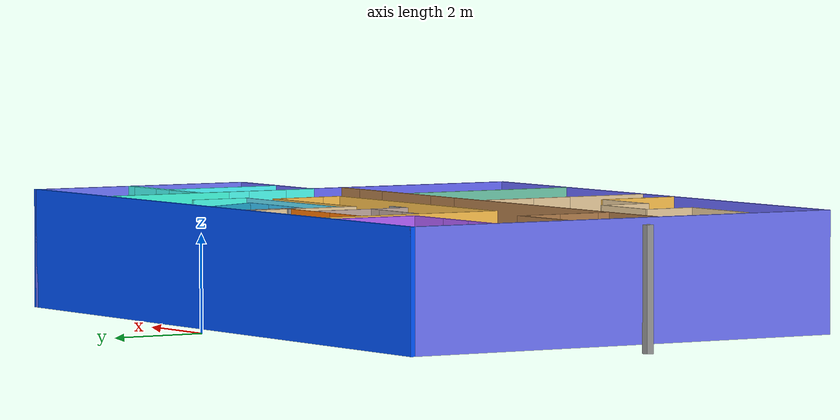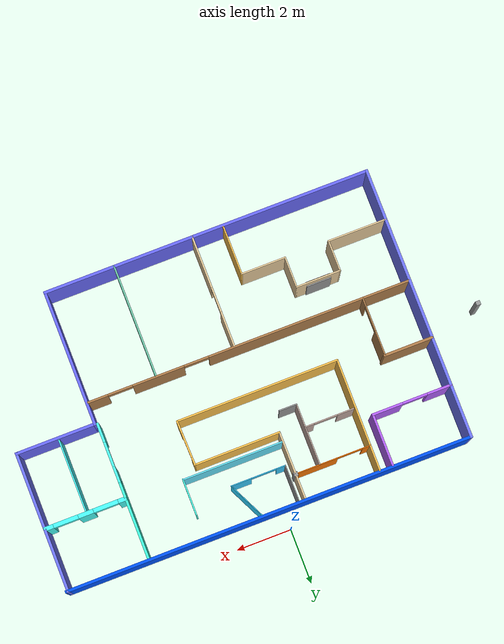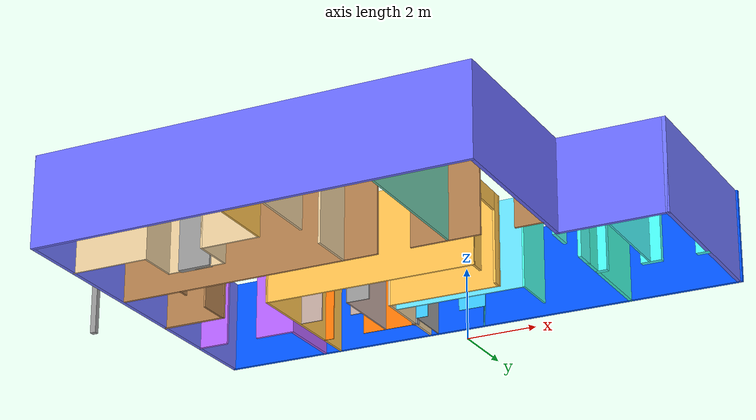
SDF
<?xml version='1.0'?>
<sdf version='1.6'>
  <model name='building'>
    <pose frame=''>-0.401722 -5.585 0 0 -0 0</pose>
    <link name='Door_14'>
      <collision name='Door_14_Collision'>
        <geometry>
          <box>
            <size>0.9 0.17 2</size>
          </box>
        </geometry>
        <pose frame=''>0 0 1 0 -0 0</pose>
      </collision>
      <visual name='Door_14_Visual'>
        <pose frame=''>0 0 1 0 -0 0</pose>
        <geometry>
          <box>
            <size>0.9 0.17 2</size>
          </box>
        </geometry>
        <material>
          <script>
            <uri>file://media/materials/scripts/gazebo.material</uri>
            <name>Gazebo/Grey</name>
          </script>
        </material>
      </visual>
      <pose frame=''>-3.51828 -2.035 0 0 -0 0</pose>
    </link>
    <link name='Wall_0'>
      <collision name='Wall_0_Collision'>
        <geometry>
          <box>
            <size>14.85 0.1 2.5</size>
          </box>
        </geometry>
        <pose frame=''>0 0 1.25 0 -0 0</pose>
      </collision>
      <visual name='Wall_0_Visual'>
        <pose frame=''>0 0 1.25 0 -0 0</pose>
        <geometry>
          <box>
            <size>14.85 0.1 2.5</size>
          </box>
        </geometry>
        <material>
          <script>
            <uri>file://media/materials/scripts/gazebo.material</uri>
            <name>Gazebo/Grey</name>
          </script>
          <ambient>0 0.333333 1 1</ambient>
        </material>
        <meta>
          <layer>0</layer>
        </meta>
      </visual>
      <pose frame=''>0.966722 4.925 0 0 -0 0</pose>
    </link>
    <link name='Wall_101'>
      <collision name='Wall_101_Collision'>
        <geometry>
          <box>
            <size>0.16 0.15 2.5</size>
          </box>
        </geometry>
        <pose frame=''>0 0 1.25 0 -0 0</pose>
      </collision>
      <visual name='Wall_101_Visual'>
        <pose frame=''>0 0 1.25 0 -0 0</pose>
        <geometry>
          <box>
            <size>0.16 0.15 2.5</size>
          </box>
        </geometry>
        <material>
          <script>
            <uri>file://media/materials/scripts/gazebo.material</uri>
            <name>Gazebo/Grey</name>
          </script>
          <ambient>1 1 1 1</ambient>
        </material>
        <meta>
          <layer>0</layer>
        </meta>
      </visual>
      <pose frame=''>-8.31172 0.73148 0 0 -0 0</pose>
    </link>
    <link name='Wall_11'>
      <collision name='Wall_11_Collision'>
        <geometry>
          <box>
            <size>2.95 0.1 2.5</size>
          </box>
        </geometry>
        <pose frame=''>0 0 1.25 0 -0 0</pose>
      </collision>
      <visual name='Wall_11_Visual'>
        <pose frame=''>0 0 1.25 0 -0 0</pose>
        <geometry>
          <box>
            <size>2.95 0.1 2.5</size>
          </box>
        </geometry>
        <material>
          <script>
            <uri>file://media/materials/scripts/gazebo.material</uri>
            <name>Gazebo/Grey</name>
          </script>
          <ambient>0.415686 0.423529 1 1</ambient>
        </material>
        <meta>
          <layer>0</layer>
        </meta>
      </visual>
      <pose frame=''>6.86672 -0.075 0 0 -0 0</pose>
    </link>
    <link name='Wall_13'>
      <collision name='Wall_13_Collision'>
        <geometry>
          <box>
            <size>5.1 0.1 2.5</size>
          </box>
        </geometry>
        <pose frame=''>0 0 1.25 0 -0 0</pose>
      </collision>
      <visual name='Wall_13_Visual'>
        <pose frame=''>0 0 1.25 0 -0 0</pose>
        <geometry>
          <box>
            <size>5.1 0.1 2.5</size>
          </box>
        </geometry>
        <material>
          <script>
            <uri>file://media/materials/scripts/gazebo.material</uri>
            <name>Gazebo/Grey</name>
          </script>
          <ambient>0.439216 0.466667 1 1</ambient>
        </material>
        <meta>
          <layer>0</layer>
        </meta>
      </visual>
      <pose frame=''>8.29172 2.425 0 0 -0 1.5708</pose>
    </link>
    <link name='Wall_16'>
      <pose frame=''>-4.97328 3.025 0 0 -0 0</pose>
      <visual name='Wall_16_Visual_0'>
        <pose frame=''>-1.015 0 1.25 0 -0 0</pose>
        <geometry>
          <box>
            <size>0.9 0.08 2.5</size>
          </box>
        </geometry>
        <material>
          <script>
            <uri>file://media/materials/scripts/gazebo.material</uri>
            <name>Gazebo/Grey</name>
          </script>
          <ambient>0.713726 0.384314 1 1</ambient>
        </material>
        <meta>
          <layer>0</layer>
        </meta>
      </visual>
      <collision name='Wall_16_Collision_0'>
        <geometry>
          <box>
            <size>0.9 0.08 2.5</size>
          </box>
        </geometry>
        <pose frame=''>-1.015 0 1.25 0 -0 0</pose>
      </collision>
      <visual name='Wall_16_Visual_1'>
        <pose frame=''>0.9 0 1.25 0 -0 0</pose>
        <geometry>
          <box>
            <size>1.13 0.08 2.5</size>
          </box>
        </geometry>
        <material>
          <script>
            <uri>file://media/materials/scripts/gazebo.material</uri>
            <name>Gazebo/Grey</name>
          </script>
          <ambient>0.713726 0.384314 1 1</ambient>
        </material>
        <meta>
          <layer>0</layer>
        </meta>
      </visual>
      <collision name='Wall_16_Collision_1'>
        <geometry>
          <box>
            <size>1.13 0.08 2.5</size>
          </box>
        </geometry>
        <pose frame=''>0.9 0 1.25 0 -0 0</pose>
      </collision>
      <visual name='Wall_16_Visual_2'>
        <pose frame=''>-0.115 0 2.25 0 -0 0</pose>
        <geometry>
          <box>
            <size>0.9 0.08 0.5</size>
          </box>
        </geometry>
        <material>
          <script>
            <uri>file://media/materials/scripts/gazebo.material</uri>
            <name>Gazebo/Grey</name>
          </script>
          <ambient>0.713726 0.384314 1 1</ambient>
        </material>
        <meta>
          <layer>0</layer>
        </meta>
      </visual>
      <collision name='Wall_16_Collision_2'>
        <geometry>
          <box>
            <size>0.9 0.08 0.5</size>
          </box>
        </geometry>
        <pose frame=''>-0.115 0 2.25 0 -0 0</pose>
      </collision>
    </link>
    <link name='Wall_17'>
      <collision name='Wall_17_Collision'>
        <geometry>
          <box>
            <size>1.93 0.08 2.5</size>
          </box>
        </geometry>
        <pose frame=''>0 0 1.25 0 -0 0</pose>
      </collision>
      <visual name='Wall_17_Visual'>
        <pose frame=''>0 0 1.25 0 -0 0</pose>
        <geometry>
          <box>
            <size>1.93 0.08 2.5</size>
          </box>
        </geometry>
        <material>
          <script>
            <uri>file://media/materials/scripts/gazebo.material</uri>
            <name>Gazebo/Grey</name>
          </script>
          <ambient>0.713726 0.384314 1 1</ambient>
        </material>
        <meta>
          <layer>0</layer>
        </meta>
      </visual>
      <pose frame=''>-3.54828 3.95 0 0 -0 1.5708</pose>
    </link>
    <link name='Wall_19'>
      <collision name='Wall_19_Collision'>
        <geometry>
          <box>
            <size>4.11001 0.06 2.5</size>
          </box>
        </geometry>
        <pose frame=''>0 0 1.25 0 -0 0</pose>
      </collision>
      <visual name='Wall_19_Visual'>
        <pose frame=''>0 0 1.25 0 -0 0</pose>
        <geometry>
          <box>
            <size>4.11001 0.06 2.5</size>
          </box>
        </geometry>
        <material>
          <script>
            <uri>file://media/materials/scripts/gazebo.material</uri>
            <name>Gazebo/Grey</name>
          </script>
          <ambient>1 0.764706 0.305882 1</ambient>
        </material>
        <meta>
          <layer>0</layer>
        </meta>
      </visual>
      <pose frame=''>-3.08328 2.86 0 0 0 -1.57326</pose>
    </link>
    <link name='Wall_20'>
      <collision name='Wall_20_Collision'>
        <geometry>
          <box>
            <size>5.92001 0.06 2.5</size>
          </box>
        </geometry>
        <pose frame=''>0 0 1.25 0 -0 0</pose>
      </collision>
      <visual name='Wall_20_Visual'>
        <pose frame=''>0 0 1.25 0 -0 0</pose>
        <geometry>
          <box>
            <size>5.92001 0.06 2.5</size>
          </box>
        </geometry>
        <material>
          <script>
            <uri>file://media/materials/scripts/gazebo.material</uri>
            <name>Gazebo/Grey</name>
          </script>
          <ambient>1 0.764706 0.305882 1</ambient>
        </material>
        <meta>
          <layer>0</layer>
        </meta>
      </visual>
      <pose frame=''>-0.148278 0.84 0 0 -0 0.001706</pose>
    </link>
    <link name='Wall_21'>
      <pose frame=''>2.76172 1.655 0 0 -0 1.59579</pose>
      <visual name='Wall_21_Visual_0'>
        <pose frame=''>-0.601224 0 1.25 0 -0 0</pose>
        <geometry>
          <box>
            <size>0.458052 0.06 2.5</size>
          </box>
        </geometry>
        <material>
          <script>
            <uri>file://media/materials/scripts/gazebo.material</uri>
            <name>Gazebo/Grey</name>
          </script>
          <ambient>1 0.764706 0.305882 1</ambient>
        </material>
        <meta>
          <layer>0</layer>
        </meta>
      </visual>
      <collision name='Wall_21_Collision_0'>
        <geometry>
          <box>
            <size>0.458052 0.06 2.5</size>
          </box>
        </geometry>
        <pose frame=''>-0.601224 0 1.25 0 -0 0</pose>
      </collision>
      <visual name='Wall_21_Visual_1'>
        <pose frame=''>0.679026 0 1.25 0 -0 0</pose>
        <geometry>
          <box>
            <size>0.302448 0.06 2.5</size>
          </box>
        </geometry>
        <material>
          <script>
            <uri>file://media/materials/scripts/gazebo.material</uri>
            <name>Gazebo/Grey</name>
          </script>
          <ambient>1 0.764706 0.305882 1</ambient>
        </material>
        <meta>
          <layer>0</layer>
        </meta>
      </visual>
      <collision name='Wall_21_Collision_1'>
        <geometry>
          <box>
            <size>0.302448 0.06 2.5</size>
          </box>
        </geometry>
        <pose frame=''>0.679026 0 1.25 0 -0 0</pose>
      </collision>
      <visual name='Wall_21_Visual_2'>
        <pose frame=''>0.077802 0 2.25 0 -0 0</pose>
        <geometry>
          <box>
            <size>0.9 0.06 0.5</size>
          </box>
        </geometry>
        <material>
          <script>
            <uri>file://media/materials/scripts/gazebo.material</uri>
            <name>Gazebo/Grey</name>
          </script>
          <ambient>1 0.764706 0.305882 1</ambient>
        </material>
        <meta>
          <layer>0</layer>
        </meta>
      </visual>
      <collision name='Wall_21_Collision_2'>
        <geometry>
          <box>
            <size>0.9 0.06 0.5</size>
          </box>
        </geometry>
        <pose frame=''>0.077802 0 2.25 0 -0 0</pose>
      </collision>
    </link>
    <link name='Wall_22'>
      <collision name='Wall_22_Collision'>
        <geometry>
          <box>
            <size>3.15002 0.06 2.5</size>
          </box>
        </geometry>
        <pose frame=''>0 0 1.25 0 -0 0</pose>
      </collision>
      <visual name='Wall_22_Visual'>
        <pose frame=''>0 0 1.25 0 -0 0</pose>
        <geometry>
          <box>
            <size>3.15002 0.06 2.5</size>
          </box>
        </geometry>
        <material>
          <script>
            <uri>file://media/materials/scripts/gazebo.material</uri>
            <name>Gazebo/Grey</name>
          </script>
          <ambient>1 0.764706 0.305882 1</ambient>
        </material>
        <meta>
          <layer>0</layer>
        </meta>
      </visual>
      <pose frame=''>1.20672 2.45 0 0 0 -3.13836</pose>
    </link>
    <link name='Wall_23'>
      <collision name='Wall_23_Collision'>
        <geometry>
          <box>
            <size>2.46033 0.06 2.5</size>
          </box>
        </geometry>
        <pose frame=''>0 0 1.25 0 -0 0</pose>
      </collision>
      <visual name='Wall_23_Visual'>
        <pose frame=''>0 0 1.25 0 -0 0</pose>
        <geometry>
          <box>
            <size>2.46033 0.06 2.5</size>
          </box>
        </geometry>
        <material>
          <script>
            <uri>file://media/materials/scripts/gazebo.material</uri>
            <name>Gazebo/Grey</name>
          </script>
          <ambient>0.921569 0.807843 0.615686 1</ambient>
        </material>
        <meta>
          <layer>0</layer>
        </meta>
      </visual>
      <pose frame=''>-0.353278 3.645 0 0 -0 1.57496</pose>
    </link>
    <link name='Wall_26'>
      <pose frame=''>-1.71828 3.975 0 0 -0 0</pose>
      <visual name='Wall_26_Visual_0'>
        <pose frame=''>-1.22983 0 1.25 0 -0 0</pose>
        <geometry>
          <box>
            <size>0.290333 0.03 2.5</size>
          </box>
        </geometry>
        <material>
          <script>
            <uri>file://media/materials/scripts/gazebo.material</uri>
            <name>Gazebo/Grey</name>
          </script>
          <ambient>0.996078 0.47451 0.0196078 1</ambient>
        </material>
        <meta>
          <layer>0</layer>
        </meta>
      </visual>
      <collision name='Wall_26_Collision_0'>
        <geometry>
          <box>
            <size>0.290333 0.03 2.5</size>
          </box>
        </geometry>
        <pose frame=''>-1.22983 0 1.25 0 -0 0</pose>
      </collision>
      <visual name='Wall_26_Visual_1'>
        <pose frame=''>0.595167 0 1.25 0 -0 0</pose>
        <geometry>
          <box>
            <size>1.55967 0.03 2.5</size>
          </box>
        </geometry>
        <material>
          <script>
            <uri>file://media/materials/scripts/gazebo.material</uri>
            <name>Gazebo/Grey</name>
          </script>
          <ambient>0.996078 0.47451 0.0196078 1</ambient>
        </material>
        <meta>
          <layer>0</layer>
        </meta>
      </visual>
      <collision name='Wall_26_Collision_1'>
        <geometry>
          <box>
            <size>1.55967 0.03 2.5</size>
          </box>
        </geometry>
        <pose frame=''>0.595167 0 1.25 0 -0 0</pose>
      </collision>
      <visual name='Wall_26_Visual_2'>
        <pose frame=''>-0.634667 0 2.25 0 -0 0</pose>
        <geometry>
          <box>
            <size>0.9 0.03 0.5</size>
          </box>
        </geometry>
        <material>
          <script>
            <uri>file://media/materials/scripts/gazebo.material</uri>
            <name>Gazebo/Grey</name>
          </script>
          <ambient>0.996078 0.47451 0.0196078 1</ambient>
        </material>
        <meta>
          <layer>0</layer>
        </meta>
      </visual>
      <collision name='Wall_26_Collision_2'>
        <geometry>
          <box>
            <size>0.9 0.03 0.5</size>
          </box>
        </geometry>
        <pose frame=''>-0.634667 0 2.25 0 -0 0</pose>
      </collision>
    </link>
    <link name='Wall_27'>
      <collision name='Wall_27_Collision'>
        <geometry>
          <box>
            <size>0.15 0.15 2.5</size>
          </box>
        </geometry>
        <pose frame=''>0 0 1.25 0 -0 0</pose>
      </collision>
      <visual name='Wall_27_Visual'>
        <pose frame=''>0 0 1.25 0 -0 0</pose>
        <geometry>
          <box>
            <size>0.15 0.15 2.5</size>
          </box>
        </geometry>
        <material>
          <script>
            <uri>file://media/materials/scripts/gazebo.material</uri>
            <name>Gazebo/Grey</name>
          </script>
          <ambient>1 1 1 1</ambient>
        </material>
        <meta>
          <layer>0</layer>
        </meta>
      </visual>
      <pose frame=''>-0.358278 3.975 0 0 -0 0</pose>
    </link>
    <link name='Wall_3'>
      <collision name='Wall_3_Collision'>
        <geometry>
          <box>
            <size>9.95 0.1 2.5</size>
          </box>
        </geometry>
        <pose frame=''>0 0 1.25 0 -0 0</pose>
      </collision>
      <visual name='Wall_3_Visual'>
        <pose frame=''>0 0 1.25 0 -0 0</pose>
        <geometry>
          <box>
            <size>9.95 0.1 2.5</size>
          </box>
        </geometry>
        <material>
          <script>
            <uri>file://media/materials/scripts/gazebo.material</uri>
            <name>Gazebo/Grey</name>
          </script>
          <ambient>0.439216 0.466667 1 1</ambient>
        </material>
        <meta>
          <layer>0</layer>
        </meta>
      </visual>
      <pose frame=''>-6.40828 0 0 0 0 -1.5708</pose>
    </link>
    <link name='Wall_46'>
      <collision name='Wall_46_Collision'>
        <geometry>
          <box>
            <size>2.24 0.04 2.5</size>
          </box>
        </geometry>
        <pose frame=''>0 0 1.25 0 -0 0</pose>
      </collision>
      <visual name='Wall_46_Visual'>
        <pose frame=''>0 0 1.25 0 -0 0</pose>
        <geometry>
          <box>
            <size>2.24 0.04 2.5</size>
          </box>
        </geometry>
        <material>
          <script>
            <uri>file://media/materials/scripts/gazebo.material</uri>
            <name>Gazebo/Grey</name>
          </script>
          <ambient>0.760784 0.662745 0.627451 1</ambient>
        </material>
        <meta>
          <layer>0</layer>
        </meta>
      </visual>
      <pose frame=''>-1.23828 2.855 0 0 0 -1.5708</pose>
    </link>
    <link name='Wall_52'>
      <pose frame=''>-2.12828 2.595 0 0 -0 3.14159</pose>
      <visual name='Wall_52_Visual_0'>
        <pose frame=''>-0.729794 0 1.25 0 -0 0</pose>
        <geometry>
          <box>
            <size>0.340412 0.04 2.5</size>
          </box>
        </geometry>
        <material>
          <script>
            <uri>file://media/materials/scripts/gazebo.material</uri>
            <name>Gazebo/Grey</name>
          </script>
          <ambient>0.760784 0.662745 0.627451 1</ambient>
        </material>
        <meta>
          <layer>0</layer>
        </meta>
      </visual>
      <collision name='Wall_52_Collision_0'>
        <geometry>
          <box>
            <size>0.340412 0.04 2.5</size>
          </box>
        </geometry>
        <pose frame=''>-0.729794 0 1.25 0 -0 0</pose>
      </collision>
      <visual name='Wall_52_Visual_1'>
        <pose frame=''>0.595206 0 1.25 0 -0 0</pose>
        <geometry>
          <box>
            <size>0.609588 0.04 2.5</size>
          </box>
        </geometry>
        <material>
          <script>
            <uri>file://media/materials/scripts/gazebo.material</uri>
            <name>Gazebo/Grey</name>
          </script>
          <ambient>0.760784 0.662745 0.627451 1</ambient>
        </material>
        <meta>
          <layer>0</layer>
        </meta>
      </visual>
      <collision name='Wall_52_Collision_1'>
        <geometry>
          <box>
            <size>0.609588 0.04 2.5</size>
          </box>
        </geometry>
        <pose frame=''>0.595206 0 1.25 0 -0 0</pose>
      </collision>
      <visual name='Wall_52_Visual_2'>
        <pose frame=''>-0.134588 0 2.25 0 -0 0</pose>
        <geometry>
          <box>
            <size>0.85 0.04 0.5</size>
          </box>
        </geometry>
        <material>
          <script>
            <uri>file://media/materials/scripts/gazebo.material</uri>
            <name>Gazebo/Grey</name>
          </script>
          <ambient>0.760784 0.662745 0.627451 1</ambient>
        </material>
        <meta>
          <layer>0</layer>
        </meta>
      </visual>
      <collision name='Wall_52_Collision_2'>
        <geometry>
          <box>
            <size>0.85 0.04 0.5</size>
          </box>
        </geometry>
        <pose frame=''>-0.134588 0 2.25 0 -0 0</pose>
      </collision>
    </link>
    <link name='Wall_56'>
      <collision name='Wall_56_Collision'>
        <geometry>
          <box>
            <size>0.66 0.04 2.5</size>
          </box>
        </geometry>
        <pose frame=''>0 0 1.25 0 -0 0</pose>
      </collision>
      <visual name='Wall_56_Visual'>
        <pose frame=''>0 0 1.25 0 -0 0</pose>
        <geometry>
          <box>
            <size>0.66 0.04 2.5</size>
          </box>
        </geometry>
        <material>
          <script>
            <uri>file://media/materials/scripts/gazebo.material</uri>
            <name>Gazebo/Grey</name>
          </script>
          <ambient>1 1 1 1</ambient>
        </material>
        <meta>
          <layer>0</layer>
        </meta>
      </visual>
      <pose frame=''>-0.928278 1.755 0 0 -0 0</pose>
    </link>
    <link name='Wall_63'>
      <collision name='Wall_63_Collision'>
        <geometry>
          <box>
            <size>3.65 0.05 2.5</size>
          </box>
        </geometry>
        <pose frame=''>0 0 1.25 0 -0 0</pose>
      </collision>
      <visual name='Wall_63_Visual'>
        <pose frame=''>0 0 1.25 0 -0 0</pose>
        <geometry>
          <box>
            <size>3.65 0.05 2.5</size>
          </box>
        </geometry>
        <material>
          <script>
            <uri>file://media/materials/scripts/gazebo.material</uri>
            <name>Gazebo/Grey</name>
          </script>
          <ambient>0.4 0.901961 1 1</ambient>
        </material>
        <meta>
          <layer>0</layer>
        </meta>
      </visual>
      <pose frame=''>1.50172 2.785 0 0 -0 0</pose>
    </link>
    <link name='Wall_64'>
      <collision name='Wall_64_Collision'>
        <geometry>
          <box>
            <size>1.33 0.05 2.5</size>
          </box>
        </geometry>
        <pose frame=''>0 0 1.25 0 -0 0</pose>
      </collision>
      <visual name='Wall_64_Visual'>
        <pose frame=''>0 0 1.25 0 -0 0</pose>
        <geometry>
          <box>
            <size>1.33 0.05 2.5</size>
          </box>
        </geometry>
        <material>
          <script>
            <uri>file://media/materials/scripts/gazebo.material</uri>
            <name>Gazebo/Grey</name>
          </script>
          <ambient>0.286275 1 0.917647 1</ambient>
        </material>
        <meta>
          <layer>0</layer>
        </meta>
      </visual>
      <pose frame=''>3.30172 3.415 0 0 -0 1.5708</pose>
    </link>
    <link name='Wall_67'>
      <collision name='Wall_67_Collision'>
        <geometry>
          <box>
            <size>2.94 0.09 2.5</size>
          </box>
        </geometry>
        <pose frame=''>0 0 1.25 0 -0 0</pose>
      </collision>
      <visual name='Wall_67_Visual'>
        <pose frame=''>0 0 1.25 0 -0 0</pose>
        <geometry>
          <box>
            <size>2.94 0.09 2.5</size>
          </box>
        </geometry>
        <material>
          <script>
            <uri>file://media/materials/scripts/gazebo.material</uri>
            <name>Gazebo/Grey</name>
          </script>
          <ambient>0.254902 1 0.878431 1</ambient>
        </material>
        <meta>
          <layer>0</layer>
        </meta>
      </visual>
      <pose frame=''>5.35172 3.49 0 0 0 -1.5708</pose>
    </link>
    <link name='Wall_69'>
      <pose frame=''>5.35172 1.015 0 0 0 -1.5708</pose>
      <visual name='Wall_69_Visual_0'>
        <pose frame=''>-0.8025 0 1.25 0 -0 0</pose>
        <geometry>
          <box>
            <size>0.585 0.09 2.5</size>
          </box>
        </geometry>
        <material>
          <script>
            <uri>file://media/materials/scripts/gazebo.material</uri>
            <name>Gazebo/Grey</name>
          </script>
          <ambient>0.305882 1 0.945098 1</ambient>
        </material>
        <meta>
          <layer>0</layer>
        </meta>
      </visual>
      <collision name='Wall_69_Collision_0'>
        <geometry>
          <box>
            <size>0.585 0.09 2.5</size>
          </box>
        </geometry>
        <pose frame=''>-0.8025 0 1.25 0 -0 0</pose>
      </collision>
      <visual name='Wall_69_Visual_1'>
        <pose frame=''>0.7425 0 1.25 0 -0 0</pose>
        <geometry>
          <box>
            <size>0.705 0.09 2.5</size>
          </box>
        </geometry>
        <material>
          <script>
            <uri>file://media/materials/scripts/gazebo.material</uri>
            <name>Gazebo/Grey</name>
          </script>
          <ambient>0.305882 1 0.945098 1</ambient>
        </material>
        <meta>
          <layer>0</layer>
        </meta>
      </visual>
      <collision name='Wall_69_Collision_1'>
        <geometry>
          <box>
            <size>0.705 0.09 2.5</size>
          </box>
        </geometry>
        <pose frame=''>0.7425 0 1.25 0 -0 0</pose>
      </collision>
      <visual name='Wall_69_Visual_2'>
        <pose frame=''>-0.06 0 2.25 0 -0 0</pose>
        <geometry>
          <box>
            <size>0.9 0.09 0.5</size>
          </box>
        </geometry>
        <material>
          <script>
            <uri>file://media/materials/scripts/gazebo.material</uri>
            <name>Gazebo/Grey</name>
          </script>
          <ambient>0.305882 1 0.945098 1</ambient>
        </material>
        <meta>
          <layer>0</layer>
        </meta>
      </visual>
      <collision name='Wall_69_Collision_2'>
        <geometry>
          <box>
            <size>0.9 0.09 0.5</size>
          </box>
        </geometry>
        <pose frame=''>-0.06 0 2.25 0 -0 0</pose>
      </collision>
    </link>
    <link name='Wall_7'>
      <collision name='Wall_7_Collision'>
        <geometry>
          <box>
            <size>11.95 0.1 2.5</size>
          </box>
        </geometry>
        <pose frame=''>0 0 1.25 0 -0 0</pose>
      </collision>
      <visual name='Wall_7_Visual'>
        <pose frame=''>0 0 1.25 0 -0 0</pose>
        <geometry>
          <box>
            <size>11.95 0.1 2.5</size>
          </box>
        </geometry>
        <material>
          <script>
            <uri>file://media/materials/scripts/gazebo.material</uri>
            <name>Gazebo/Grey</name>
          </script>
          <ambient>0.415686 0.423529 1 1</ambient>
        </material>
        <meta>
          <layer>0</layer>
        </meta>
      </visual>
      <pose frame=''>-0.483278 -4.925 0 0 -0 0</pose>
    </link>
    <link name='Wall_72'>
      <pose frame=''>6.82672 2.685 0 0 -0 0</pose>
      <visual name='Wall_72_Visual_0'>
        <pose frame=''>-1.3475 0 1.25 0 -0 0</pose>
        <geometry>
          <box>
            <size>0.305 0.15 2.5</size>
          </box>
        </geometry>
        <material>
          <script>
            <uri>file://media/materials/scripts/gazebo.material</uri>
            <name>Gazebo/Grey</name>
          </script>
          <ambient>0.290196 1 0.976471 1</ambient>
        </material>
        <meta>
          <layer>0</layer>
        </meta>
      </visual>
      <collision name='Wall_72_Collision_0'>
        <geometry>
          <box>
            <size>0.305 0.15 2.5</size>
          </box>
        </geometry>
        <pose frame=''>-1.3475 0 1.25 0 -0 0</pose>
      </collision>
      <visual name='Wall_72_Visual_1'>
        <pose frame=''>-0.02 0 1.25 0 -0 0</pose>
        <geometry>
          <box>
            <size>0.55 0.15 2.5</size>
          </box>
        </geometry>
        <material>
          <script>
            <uri>file://media/materials/scripts/gazebo.material</uri>
            <name>Gazebo/Grey</name>
          </script>
          <ambient>0.290196 1 0.976471 1</ambient>
        </material>
        <meta>
          <layer>0</layer>
        </meta>
      </visual>
      <collision name='Wall_72_Collision_1'>
        <geometry>
          <box>
            <size>0.55 0.15 2.5</size>
          </box>
        </geometry>
        <pose frame=''>-0.02 0 1.25 0 -0 0</pose>
      </collision>
      <visual name='Wall_72_Visual_2'>
        <pose frame=''>1.3275 0 1.25 0 -0 0</pose>
        <geometry>
          <box>
            <size>0.345 0.15 2.5</size>
          </box>
        </geometry>
        <material>
          <script>
            <uri>file://media/materials/scripts/gazebo.material</uri>
            <name>Gazebo/Grey</name>
          </script>
          <ambient>0.290196 1 0.976471 1</ambient>
        </material>
        <meta>
          <layer>0</layer>
        </meta>
      </visual>
      <collision name='Wall_72_Collision_2'>
        <geometry>
          <box>
            <size>0.345 0.15 2.5</size>
          </box>
        </geometry>
        <pose frame=''>1.3275 0 1.25 0 -0 0</pose>
      </collision>
      <visual name='Wall_72_Visual_3'>
        <pose frame=''>-0.745 0 2.25 0 -0 0</pose>
        <geometry>
          <box>
            <size>0.9 0.15 0.5</size>
          </box>
        </geometry>
        <material>
          <script>
            <uri>file://media/materials/scripts/gazebo.material</uri>
            <name>Gazebo/Grey</name>
          </script>
          <ambient>0.290196 1 0.976471 1</ambient>
        </material>
        <meta>
          <layer>0</layer>
        </meta>
      </visual>
      <collision name='Wall_72_Collision_3'>
        <geometry>
          <box>
            <size>0.9 0.15 0.5</size>
          </box>
        </geometry>
        <pose frame=''>-0.745 0 2.25 0 -0 0</pose>
      </collision>
      <visual name='Wall_72_Visual_4'>
        <pose frame=''>0.705 0 2.25 0 -0 0</pose>
        <geometry>
          <box>
            <size>0.9 0.15 0.5</size>
          </box>
        </geometry>
        <material>
          <script>
            <uri>file://media/materials/scripts/gazebo.material</uri>
            <name>Gazebo/Grey</name>
          </script>
          <ambient>0.290196 1 0.976471 1</ambient>
        </material>
        <meta>
          <layer>0</layer>
        </meta>
      </visual>
      <collision name='Wall_72_Collision_4'>
        <geometry>
          <box>
            <size>0.9 0.15 0.5</size>
          </box>
        </geometry>
        <pose frame=''>0.705 0 2.25 0 -0 0</pose>
      </collision>
    </link>
    <link name='Wall_74'>
      <collision name='Wall_74_Collision'>
        <geometry>
          <box>
            <size>2.65 0.05 2.5</size>
          </box>
        </geometry>
        <pose frame=''>0 0 1.25 0 -0 0</pose>
      </collision>
      <visual name='Wall_74_Visual'>
        <pose frame=''>0 0 1.25 0 -0 0</pose>
        <geometry>
          <box>
            <size>2.65 0.05 2.5</size>
          </box>
        </geometry>
        <material>
          <script>
            <uri>file://media/materials/scripts/gazebo.material</uri>
            <name>Gazebo/Grey</name>
          </script>
          <ambient>0.294118 0.988235 1 1</ambient>
        </material>
        <meta>
          <layer>0</layer>
        </meta>
      </visual>
      <pose frame=''>6.77172 1.315 0 0 0 -1.5708</pose>
    </link>
    <link name='Wall_76'>
      <collision name='Wall_76_Collision'>
        <geometry>
          <box>
            <size>1.46126 0.03 2.5</size>
          </box>
        </geometry>
        <pose frame=''>0 0 1.25 0 -0 0</pose>
      </collision>
      <visual name='Wall_76_Visual'>
        <pose frame=''>0 0 1.25 0 -0 0</pose>
        <geometry>
          <box>
            <size>1.46126 0.03 2.5</size>
          </box>
        </geometry>
        <material>
          <script>
            <uri>file://media/materials/scripts/gazebo.material</uri>
            <name>Gazebo/Grey</name>
          </script>
          <ambient>0.168627 0.819608 1 1</ambient>
        </material>
        <meta>
          <layer>0</layer>
        </meta>
      </visual>
      <pose frame=''>1.53172 4.23 0 0 0 -1.12277</pose>
    </link>
    <link name='Wall_77'>
      <pose frame=''>0.856722 3.575 0 0 -0 3.14159</pose>
      <visual name='Wall_77_Visual_0'>
        <pose frame=''>-0.6225 0 1.25 0 -0 0</pose>
        <geometry>
          <box>
            <size>0.755 0.03 2.5</size>
          </box>
        </geometry>
        <material>
          <script>
            <uri>file://media/materials/scripts/gazebo.material</uri>
            <name>Gazebo/Grey</name>
          </script>
          <ambient>0.227451 0.796078 1 1</ambient>
        </material>
        <meta>
          <layer>0</layer>
        </meta>
      </visual>
      <collision name='Wall_77_Collision_0'>
        <geometry>
          <box>
            <size>0.755 0.03 2.5</size>
          </box>
        </geometry>
        <pose frame=''>-0.6225 0 1.25 0 -0 0</pose>
      </collision>
      <visual name='Wall_77_Visual_1'>
        <pose frame=''>0.8275 0 1.25 0 -0 0</pose>
        <geometry>
          <box>
            <size>0.345 0.03 2.5</size>
          </box>
        </geometry>
        <material>
          <script>
            <uri>file://media/materials/scripts/gazebo.material</uri>
            <name>Gazebo/Grey</name>
          </script>
          <ambient>0.227451 0.796078 1 1</ambient>
        </material>
        <meta>
          <layer>0</layer>
        </meta>
      </visual>
      <collision name='Wall_77_Collision_1'>
        <geometry>
          <box>
            <size>0.345 0.03 2.5</size>
          </box>
        </geometry>
        <pose frame=''>0.8275 0 1.25 0 -0 0</pose>
      </collision>
      <visual name='Wall_77_Visual_2'>
        <pose frame=''>0.205 0 2.25 0 -0 0</pose>
        <geometry>
          <box>
            <size>0.9 0.03 0.5</size>
          </box>
        </geometry>
        <material>
          <script>
            <uri>file://media/materials/scripts/gazebo.material</uri>
            <name>Gazebo/Grey</name>
          </script>
          <ambient>0.227451 0.796078 1 1</ambient>
        </material>
        <meta>
          <layer>0</layer>
        </meta>
      </visual>
      <collision name='Wall_77_Collision_2'>
        <geometry>
          <box>
            <size>0.9 0.03 0.5</size>
          </box>
        </geometry>
        <pose frame=''>0.205 0 2.25 0 -0 0</pose>
      </collision>
    </link>
    <link name='Wall_78'>
      <collision name='Wall_78_Collision'>
        <geometry>
          <box>
            <size>1.32 0.03 2.5</size>
          </box>
        </geometry>
        <pose frame=''>0 0 1.25 0 -0 0</pose>
      </collision>
      <visual name='Wall_78_Visual'>
        <pose frame=''>0 0 1.25 0 -0 0</pose>
        <geometry>
          <box>
            <size>1.32 0.03 2.5</size>
          </box>
        </geometry>
        <material>
          <script>
            <uri>file://media/materials/scripts/gazebo.material</uri>
            <name>Gazebo/Grey</name>
          </script>
          <ambient>1 1 1 1</ambient>
        </material>
        <meta>
          <layer>0</layer>
        </meta>
      </visual>
      <pose frame=''>-0.128278 4.23 0 0 -0 1.5708</pose>
    </link>
    <link name='Wall_80'>
      <pose frame=''>-0.488278 -0.845 0 0 -0 0</pose>
      <visual name='Wall_80_Visual_0'>
        <pose frame=''>-2.2175 0 1.25 0 -0 0</pose>
        <geometry>
          <box>
            <size>7.375 0.07 2.5</size>
          </box>
        </geometry>
        <material>
          <script>
            <uri>file://media/materials/scripts/gazebo.material</uri>
            <name>Gazebo/Wood</name>
          </script>
          <ambient>1 1 1 1</ambient>
        </material>
        <meta>
          <layer>0</layer>
        </meta>
      </visual>
      <collision name='Wall_80_Collision_0'>
        <geometry>
          <box>
            <size>7.375 0.07 2.5</size>
          </box>
        </geometry>
        <pose frame=''>-2.2175 0 1.25 0 -0 0</pose>
      </collision>
      <visual name='Wall_80_Visual_1'>
        <pose frame=''>3.315 0 1.25 0 -0 0</pose>
        <geometry>
          <box>
            <size>1.89 0.07 2.5</size>
          </box>
        </geometry>
        <material>
          <script>
            <uri>file://media/materials/scripts/gazebo.material</uri>
            <name>Gazebo/Wood</name>
          </script>
          <ambient>1 1 1 1</ambient>
        </material>
        <meta>
          <layer>0</layer>
        </meta>
      </visual>
      <collision name='Wall_80_Collision_1'>
        <geometry>
          <box>
            <size>1.89 0.07 2.5</size>
          </box>
        </geometry>
        <pose frame=''>3.315 0 1.25 0 -0 0</pose>
      </collision>
      <visual name='Wall_80_Visual_2'>
        <pose frame=''>5.5325 0 1.25 0 -0 0</pose>
        <geometry>
          <box>
            <size>0.745 0.07 2.5</size>
          </box>
        </geometry>
        <material>
          <script>
            <uri>file://media/materials/scripts/gazebo.material</uri>
            <name>Gazebo/Wood</name>
          </script>
          <ambient>1 1 1 1</ambient>
        </material>
        <meta>
          <layer>0</layer>
        </meta>
      </visual>
      <collision name='Wall_80_Collision_2'>
        <geometry>
          <box>
            <size>0.745 0.07 2.5</size>
          </box>
        </geometry>
        <pose frame=''>5.5325 0 1.25 0 -0 0</pose>
      </collision>
      <visual name='Wall_80_Visual_3'>
        <pose frame=''>1.92 0 2.25 0 -0 0</pose>
        <geometry>
          <box>
            <size>0.9 0.07 0.5</size>
          </box>
        </geometry>
        <material>
          <script>
            <uri>file://media/materials/scripts/gazebo.material</uri>
            <name>Gazebo/Wood</name>
          </script>
          <ambient>1 1 1 1</ambient>
        </material>
        <meta>
          <layer>0</layer>
        </meta>
      </visual>
      <collision name='Wall_80_Collision_3'>
        <geometry>
          <box>
            <size>0.9 0.07 0.5</size>
          </box>
        </geometry>
        <pose frame=''>1.92 0 2.25 0 -0 0</pose>
      </collision>
      <visual name='Wall_80_Visual_4'>
        <pose frame=''>4.71 0 2.25 0 -0 0</pose>
        <geometry>
          <box>
            <size>0.9 0.07 0.5</size>
          </box>
        </geometry>
        <material>
          <script>
            <uri>file://media/materials/scripts/gazebo.material</uri>
            <name>Gazebo/Wood</name>
          </script>
          <ambient>1 1 1 1</ambient>
        </material>
        <meta>
          <layer>0</layer>
        </meta>
      </visual>
      <collision name='Wall_80_Collision_4'>
        <geometry>
          <box>
            <size>0.9 0.07 0.5</size>
          </box>
        </geometry>
        <pose frame=''>4.71 0 2.25 0 -0 0</pose>
      </collision>
    </link>
    <link name='Wall_84'>
      <collision name='Wall_84_Collision'>
        <geometry>
          <box>
            <size>4.1 0.06 2.5</size>
          </box>
        </geometry>
        <pose frame=''>0 0 1.25 0 -0 0</pose>
      </collision>
      <visual name='Wall_84_Visual'>
        <pose frame=''>0 0 1.25 0 -0 0</pose>
        <geometry>
          <box>
            <size>4.1 0.06 2.5</size>
          </box>
        </geometry>
        <material>
          <script>
            <uri>file://media/materials/scripts/gazebo.material</uri>
            <name>Gazebo/Grey</name>
          </script>
          <ambient>0.435294 0.796078 0.67451 1</ambient>
        </material>
        <meta>
          <layer>0</layer>
        </meta>
      </visual>
      <pose frame=''>2.90172 -2.905 0 0 0 -1.5708</pose>
    </link>
    <link name='Wall_89'>
      <pose frame=''>0.031722 -2.905 0 0 0 -1.5708</pose>
      <visual name='Wall_89_Visual_0'>
        <pose frame=''>-1.41 0 1.25 0 -0 0</pose>
        <geometry>
          <box>
            <size>1.28 0.06 2.5</size>
          </box>
        </geometry>
        <material>
          <script>
            <uri>file://media/materials/scripts/gazebo.material</uri>
            <name>Gazebo/Grey</name>
          </script>
          <ambient>0.921569 0.807843 0.615686 1</ambient>
        </material>
        <meta>
          <layer>0</layer>
        </meta>
      </visual>
      <collision name='Wall_89_Collision_0'>
        <geometry>
          <box>
            <size>1.28 0.06 2.5</size>
          </box>
        </geometry>
        <pose frame=''>-1.41 0 1.25 0 -0 0</pose>
      </collision>
      <visual name='Wall_89_Visual_1'>
        <pose frame=''>1.09 0 1.25 0 -0 0</pose>
        <geometry>
          <box>
            <size>1.92 0.06 2.5</size>
          </box>
        </geometry>
        <material>
          <script>
            <uri>file://media/materials/scripts/gazebo.material</uri>
            <name>Gazebo/Grey</name>
          </script>
          <ambient>0.921569 0.807843 0.615686 1</ambient>
        </material>
        <meta>
          <layer>0</layer>
        </meta>
      </visual>
      <collision name='Wall_89_Collision_1'>
        <geometry>
          <box>
            <size>1.92 0.06 2.5</size>
          </box>
        </geometry>
        <pose frame=''>1.09 0 1.25 0 -0 0</pose>
      </collision>
      <visual name='Wall_89_Visual_2'>
        <pose frame=''>-0.32 0 2.25 0 -0 0</pose>
        <geometry>
          <box>
            <size>0.9 0.06 0.5</size>
          </box>
        </geometry>
        <material>
          <script>
            <uri>file://media/materials/scripts/gazebo.material</uri>
            <name>Gazebo/Grey</name>
          </script>
          <ambient>0.921569 0.807843 0.615686 1</ambient>
        </material>
        <meta>
          <layer>0</layer>
        </meta>
      </visual>
      <collision name='Wall_89_Collision_2'>
        <geometry>
          <box>
            <size>0.9 0.06 0.5</size>
          </box>
        </geometry>
        <pose frame=''>-0.32 0 2.25 0 -0 0</pose>
      </collision>
    </link>
    <link name='Wall_9'>
      <collision name='Wall_9_Collision'>
        <geometry>
          <box>
            <size>4.95 0.1 2.5</size>
          </box>
        </geometry>
        <pose frame=''>0 0 1.25 0 -0 0</pose>
      </collision>
      <visual name='Wall_9_Visual'>
        <pose frame=''>0 0 1.25 0 -0 0</pose>
        <geometry>
          <box>
            <size>4.95 0.1 2.5</size>
          </box>
        </geometry>
        <material>
          <script>
            <uri>file://media/materials/scripts/gazebo.material</uri>
            <name>Gazebo/Grey</name>
          </script>
          <ambient>0.415686 0.423529 1 1</ambient>
        </material>
        <meta>
          <layer>0</layer>
        </meta>
      </visual>
      <pose frame=''>5.44172 -2.5 0 0 -0 1.5708</pose>
    </link>
    <link name='Wall_91'>
      <collision name='Wall_91_Collision'>
        <geometry>
          <box>
            <size>2.15 0.05 2.5</size>
          </box>
        </geometry>
        <pose frame=''>0 0 1.25 0 -0 0</pose>
      </collision>
      <visual name='Wall_91_Visual'>
        <pose frame=''>0 0 1.25 0 -0 0</pose>
        <geometry>
          <box>
            <size>2.15 0.05 2.5</size>
          </box>
        </geometry>
        <material>
          <script>
            <uri>file://media/materials/scripts/gazebo.material</uri>
            <name>Gazebo/Grey</name>
          </script>
          <ambient>0.921569 0.807843 0.615686 1</ambient>
        </material>
        <meta>
          <layer>0</layer>
        </meta>
      </visual>
      <pose frame=''>-5.34828 -3.115 0 0 -0 0</pose>
    </link>
    <link name='Wall_92'>
      <collision name='Wall_92_Collision'>
        <geometry>
          <box>
            <size>1.15 0.05 2.5</size>
          </box>
        </geometry>
        <pose frame=''>0 0 1.25 0 -0 0</pose>
      </collision>
      <visual name='Wall_92_Visual'>
        <pose frame=''>0 0 1.25 0 -0 0</pose>
        <geometry>
          <box>
            <size>1.15 0.05 2.5</size>
          </box>
        </geometry>
        <material>
          <script>
            <uri>file://media/materials/scripts/gazebo.material</uri>
            <name>Gazebo/Grey</name>
          </script>
          <ambient>0.921569 0.807843 0.615686 1</ambient>
        </material>
        <meta>
          <layer>0</layer>
        </meta>
      </visual>
      <pose frame=''>-4.29828 -2.565 0 0 -0 1.5708</pose>
    </link>
    <link name='Wall_93'>
      <collision name='Wall_93_Collision'>
        <geometry>
          <box>
            <size>1.65 0.05 2.5</size>
          </box>
        </geometry>
        <pose frame=''>0 0 1.25 0 -0 0</pose>
      </collision>
      <visual name='Wall_93_Visual'>
        <pose frame=''>0 0 1.25 0 -0 0</pose>
        <geometry>
          <box>
            <size>1.65 0.05 2.5</size>
          </box>
        </geometry>
        <material>
          <script>
            <uri>file://media/materials/scripts/gazebo.material</uri>
            <name>Gazebo/Grey</name>
          </script>
          <ambient>0.921569 0.807843 0.615686 1</ambient>
        </material>
        <meta>
          <layer>0</layer>
        </meta>
      </visual>
      <pose frame=''>-3.49828 -2.015 0 0 -0 0</pose>
    </link>
    <link name='Wall_94'>
      <collision name='Wall_94_Collision'>
        <geometry>
          <box>
            <size>1.15 0.05 2.5</size>
          </box>
        </geometry>
        <pose frame=''>0 0 1.25 0 -0 0</pose>
      </collision>
      <visual name='Wall_94_Visual'>
        <pose frame=''>0 0 1.25 0 -0 0</pose>
        <geometry>
          <box>
            <size>1.15 0.05 2.5</size>
          </box>
        </geometry>
        <material>
          <script>
            <uri>file://media/materials/scripts/gazebo.material</uri>
            <name>Gazebo/Grey</name>
          </script>
          <ambient>0.921569 0.807843 0.615686 1</ambient>
        </material>
        <meta>
          <layer>0</layer>
        </meta>
      </visual>
      <pose frame=''>-2.69828 -2.565 0 0 0 -1.5708</pose>
    </link>
    <link name='Wall_95'>
      <collision name='Wall_95_Collision'>
        <geometry>
          <box>
            <size>1.65 0.05 2.5</size>
          </box>
        </geometry>
        <pose frame=''>0 0 1.25 0 -0 0</pose>
      </collision>
      <visual name='Wall_95_Visual'>
        <pose frame=''>0 0 1.25 0 -0 0</pose>
        <geometry>
          <box>
            <size>1.65 0.05 2.5</size>
          </box>
        </geometry>
        <material>
          <script>
            <uri>file://media/materials/scripts/gazebo.material</uri>
            <name>Gazebo/Grey</name>
          </script>
          <ambient>0.921569 0.807843 0.615686 1</ambient>
        </material>
        <meta>
          <layer>0</layer>
        </meta>
      </visual>
      <pose frame=''>-1.89828 -3.115 0 0 -0 0</pose>
    </link>
    <link name='Wall_96'>
      <collision name='Wall_96_Collision'>
        <geometry>
          <box>
            <size>1.8 0.05 2.5</size>
          </box>
        </geometry>
        <pose frame=''>0 0 1.25 0 -0 0</pose>
      </collision>
      <visual name='Wall_96_Visual'>
        <pose frame=''>0 0 1.25 0 -0 0</pose>
        <geometry>
          <box>
            <size>1.8 0.05 2.5</size>
          </box>
        </geometry>
        <material>
          <script>
            <uri>file://media/materials/scripts/gazebo.material</uri>
            <name>Gazebo/Grey</name>
          </script>
          <ambient>1 0.764706 0.305882 1</ambient>
        </material>
        <meta>
          <layer>0</layer>
        </meta>
      </visual>
      <pose frame=''>-1.09828 -3.99 0 0 0 -1.5708</pose>
    </link>
    <link name='Wall_98'>
      <pose frame=''>-4.67828 0.225 0 0 -0 1.5708</pose>
      <visual name='Wall_98_Visual_0'>
        <pose frame=''>-0.9225 0 1.25 0 -0 0</pose>
        <geometry>
          <box>
            <size>0.305 0.05 2.5</size>
          </box>
        </geometry>
        <material>
          <script>
            <uri>file://media/materials/scripts/gazebo.material</uri>
            <name>Gazebo/Wood</name>
          </script>
          <ambient>1 1 1 1</ambient>
        </material>
        <meta>
          <layer>0</layer>
        </meta>
      </visual>
      <collision name='Wall_98_Collision_0'>
        <geometry>
          <box>
            <size>0.305 0.05 2.5</size>
          </box>
        </geometry>
        <pose frame=''>-0.9225 0 1.25 0 -0 0</pose>
      </collision>
      <visual name='Wall_98_Visual_1'>
        <pose frame=''>0.6025 0 1.25 0 -0 0</pose>
        <geometry>
          <box>
            <size>0.945 0.05 2.5</size>
          </box>
        </geometry>
        <material>
          <script>
            <uri>file://media/materials/scripts/gazebo.material</uri>
            <name>Gazebo/Wood</name>
          </script>
          <ambient>1 1 1 1</ambient>
        </material>
        <meta>
          <layer>0</layer>
        </meta>
      </visual>
      <collision name='Wall_98_Collision_1'>
        <geometry>
          <box>
            <size>0.945 0.05 2.5</size>
          </box>
        </geometry>
        <pose frame=''>0.6025 0 1.25 0 -0 0</pose>
      </collision>
      <visual name='Wall_98_Visual_2'>
        <pose frame=''>-0.32 0 2.25 0 -0 0</pose>
        <geometry>
          <box>
            <size>0.9 0.05 0.5</size>
          </box>
        </geometry>
        <material>
          <script>
            <uri>file://media/materials/scripts/gazebo.material</uri>
            <name>Gazebo/Wood</name>
          </script>
          <ambient>1 1 1 1</ambient>
        </material>
        <meta>
          <layer>0</layer>
        </meta>
      </visual>
      <collision name='Wall_98_Collision_2'>
        <geometry>
          <box>
            <size>0.9 0.05 0.5</size>
          </box>
        </geometry>
        <pose frame=''>-0.32 0 2.25 0 -0 0</pose>
      </collision>
    </link>
    <link name='Wall_99'>
      <collision name='Wall_99_Collision'>
        <geometry>
          <box>
            <size>1.81 0.09 2.5</size>
          </box>
        </geometry>
        <pose frame=''>0 0 1.25 0 -0 0</pose>
      </collision>
      <visual name='Wall_99_Visual'>
        <pose frame=''>0 0 1.25 0 -0 0</pose>
        <geometry>
          <box>
            <size>1.81 0.09 2.5</size>
          </box>
        </geometry>
        <material>
          <script>
            <uri>file://media/materials/scripts/gazebo.material</uri>
            <name>Gazebo/Wood</name>
          </script>
          <ambient>1 1 1 1</ambient>
        </material>
        <meta>
          <layer>0</layer>
        </meta>
      </visual>
      <pose frame=''>-5.52828 1.275 0 0 -0 3.14159</pose>
    </link>
    <static>1</static>
  </model>
</sdf>
